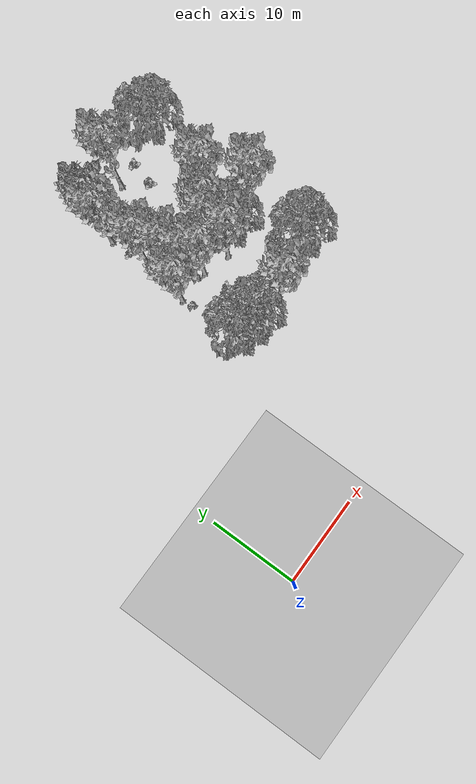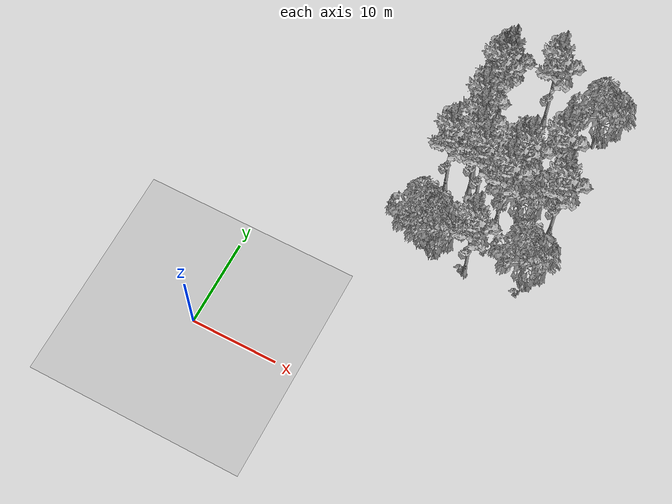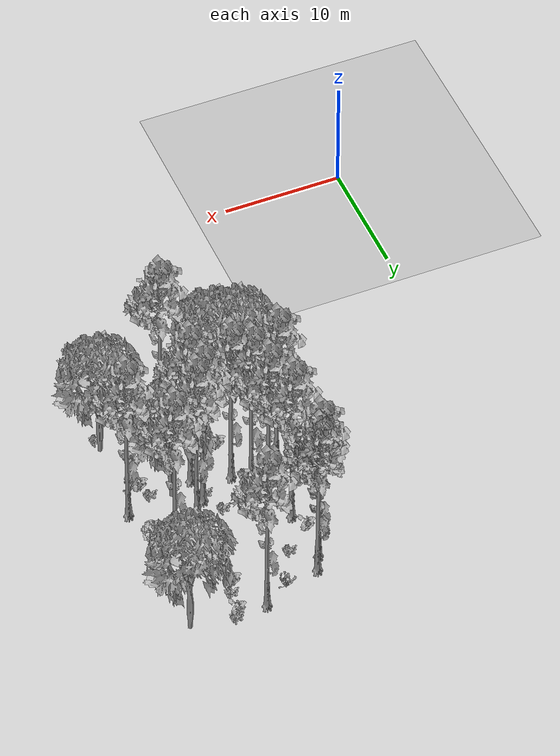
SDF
<sdf version="1.7">
 <world name="default">
  <model name="ground_plane">
   <static>1</static>
   <link name="link">
    <collision name="collision">
     <pose>-50 0 0 0 -0 0</pose>
     <geometry><plane><normal>0 0 1</normal><size>80 80</size></plane></geometry>
     <surface><contact><ode><min_depth>0.01</min_depth><max_vel>0</max_vel></ode></contact></surface>
    </collision>
    <visual name="grass">
     <cast_shadows>0</cast_shadows>
     <geometry>
      <mesh>
       <scale>0.46714285714285714 0.46714285714285714 0.1</scale>
       <uri>file://grass_plane/meshes/grass_plane.dae</uri>
      </mesh>
     </geometry>
    </visual>
   </link>
  </model>
  <model name="Tree 8">
   <static>1</static>
   <pose>17.459714961687183 36.581936003049336 0 1.57079 -0 0</pose>
   <link name="link">
    <collision name="collision">
     <geometry><mesh><scale>3.5 5 3.5</scale><uri>model://tree_9/meshes/tree_9.obj</uri></mesh></geometry>
    </collision>
    <visual name="visual">
     <geometry><mesh><scale>3.5 5 3.5</scale><uri>model://tree_9/meshes/tree_9.obj</uri></mesh></geometry>
    </visual>
   </link>
  </model>
  <model name="Tree 33">
   <static>1</static>
   <pose>18.888336202373424 19.00891305756567 0 1.57079 -0 0</pose>
   <link name="link">
    <collision name="collision">
     <geometry><mesh><scale>3.5 5 3.5</scale><uri>model://tree_2/meshes/tree_2.obj</uri></mesh></geometry>
    </collision>
    <visual name="visual">
     <geometry><mesh><scale>3.5 5 3.5</scale><uri>model://tree_2/meshes/tree_2.obj</uri></mesh></geometry>
    </visual>
   </link>
  </model>
  <model name="Tree 77">
   <static>1</static>
   <pose>27.13264223164208 31.46648215437368 0 1.57079 -0 0</pose>
   <link name="link">
    <collision name="collision">
     <geometry><mesh><scale>3.5 5 3.5</scale><uri>model://tree_9/meshes/tree_9.obj</uri></mesh></geometry>
    </collision>
    <visual name="visual">
     <geometry><mesh><scale>3.5 5 3.5</scale><uri>model://tree_9/meshes/tree_9.obj</uri></mesh></geometry>
    </visual>
   </link>
  </model>
  <model name="Tree 80">
   <static>1</static>
   <pose>17.247273729239808 19.502905807618518 0 1.57079 -0 0</pose>
   <link name="link">
    <collision name="collision">
     <geometry><mesh><scale>3.5 5 3.5</scale><uri>model://tree_2/meshes/tree_2.obj</uri></mesh></geometry>
    </collision>
    <visual name="visual">
     <geometry><mesh><scale>3.5 5 3.5</scale><uri>model://tree_2/meshes/tree_2.obj</uri></mesh></geometry>
    </visual>
   </link>
  </model>
  <model name="Tree 90">
   <static>1</static>
   <pose>18.071024182380796 37.84685704788694 0 1.57079 -0 0</pose>
   <link name="link">
    <collision name="collision">
     <geometry><mesh><scale>3.5 5 3.5</scale><uri>model://tree_9/meshes/tree_9.obj</uri></mesh></geometry>
    </collision>
    <visual name="visual">
     <geometry><mesh><scale>3.5 5 3.5</scale><uri>model://tree_9/meshes/tree_9.obj</uri></mesh></geometry>
    </visual>
   </link>
  </model>
  <model name="Tree 122">
   <static>1</static>
   <pose>18.05862319172133 37.82097752939002 0 1.57079 -0 0</pose>
   <link name="link">
    <collision name="collision">
     <geometry><mesh><scale>3.5 5 3.5</scale><uri>model://tree_9/meshes/tree_9.obj</uri></mesh></geometry>
    </collision>
    <visual name="visual">
     <geometry><mesh><scale>3.5 5 3.5</scale><uri>model://tree_9/meshes/tree_9.obj</uri></mesh></geometry>
    </visual>
   </link>
  </model>
  <model name="Tree 152">
   <static>1</static>
   <pose>22.97218649013748 39.57331749805812 0 1.57079 -0 0</pose>
   <link name="link">
    <collision name="collision">
     <geometry><mesh><scale>3.5 5 3.5</scale><uri>model://tree_9/meshes/tree_9.obj</uri></mesh></geometry>
    </collision>
    <visual name="visual">
     <geometry><mesh><scale>3.5 5 3.5</scale><uri>model://tree_9/meshes/tree_9.obj</uri></mesh></geometry>
    </visual>
   </link>
  </model>
  <model name="Tree 159">
   <static>1</static>
   <pose>23.155795922406917 18.587950382260004 0 1.57079 -0 0</pose>
   <link name="link">
    <collision name="collision">
     <geometry><mesh><scale>3.5 5 3.5</scale><uri>model://tree_9/meshes/tree_9.obj</uri></mesh></geometry>
    </collision>
    <visual name="visual">
     <geometry><mesh><scale>3.5 5 3.5</scale><uri>model://tree_9/meshes/tree_9.obj</uri></mesh></geometry>
    </visual>
   </link>
  </model>
  <model name="Tree 236">
   <static>1</static>
   <pose>29.063100638676303 39.345394394311754 0 1.57079 -0 0</pose>
   <link name="link">
    <collision name="collision">
     <geometry><mesh><scale>3.5 5 3.5</scale><uri>model://tree_2/meshes/tree_2.obj</uri></mesh></geometry>
    </collision>
    <visual name="visual">
     <geometry><mesh><scale>3.5 5 3.5</scale><uri>model://tree_2/meshes/tree_2.obj</uri></mesh></geometry>
    </visual>
   </link>
  </model>
  <model name="Tree 265">
   <static>1</static>
   <pose>23.579774420435307 25.721600984897094 0 1.57079 -0 0</pose>
   <link name="link">
    <collision name="collision">
     <geometry><mesh><scale>3.5 5 3.5</scale><uri>model://tree_9/meshes/tree_9.obj</uri></mesh></geometry>
    </collision>
    <visual name="visual">
     <geometry><mesh><scale>3.5 5 3.5</scale><uri>model://tree_9/meshes/tree_9.obj</uri></mesh></geometry>
    </visual>
   </link>
  </model>
  <model name="Tree 267">
   <static>1</static>
   <pose>19.292006245774004 27.67410443770146 0 1.57079 -0 0</pose>
   <link name="link">
    <collision name="collision">
     <geometry><mesh><scale>3.5 5 3.5</scale><uri>model://tree_9/meshes/tree_9.obj</uri></mesh></geometry>
    </collision>
    <visual name="visual">
     <geometry><mesh><scale>3.5 5 3.5</scale><uri>model://tree_9/meshes/tree_9.obj</uri></mesh></geometry>
    </visual>
   </link>
  </model>
  <model name="Tree 273">
   <static>1</static>
   <pose>16.780764506276007 26.70670163275227 0 1.57079 -0 0</pose>
   <link name="link">
    <collision name="collision">
     <geometry><mesh><scale>3.5 5 3.5</scale><uri>model://tree_9/meshes/tree_9.obj</uri></mesh></geometry>
    </collision>
    <visual name="visual">
     <geometry><mesh><scale>3.5 5 3.5</scale><uri>model://tree_9/meshes/tree_9.obj</uri></mesh></geometry>
    </visual>
   </link>
  </model>
  <model name="Tree 284">
   <static>1</static>
   <pose>25.440104627843596 26.602334801527377 0 1.57079 -0 0</pose>
   <link name="link">
    <collision name="collision">
     <geometry><mesh><scale>3.5 5 3.5</scale><uri>model://tree_2/meshes/tree_2.obj</uri></mesh></geometry>
    </collision>
    <visual name="visual">
     <geometry><mesh><scale>3.5 5 3.5</scale><uri>model://tree_2/meshes/tree_2.obj</uri></mesh></geometry>
    </visual>
   </link>
  </model>
  <model name="Tree 374">
   <static>1</static>
   <pose>18.753323511811473 29.771702123173156 0 1.57079 -0 0</pose>
   <link name="link">
    <collision name="collision">
     <geometry><mesh><scale>3.5 5 3.5</scale><uri>model://tree_9/meshes/tree_9.obj</uri></mesh></geometry>
    </collision>
    <visual name="visual">
     <geometry><mesh><scale>3.5 5 3.5</scale><uri>model://tree_9/meshes/tree_9.obj</uri></mesh></geometry>
    </visual>
   </link>
  </model>
  <model name="Tree 424">
   <static>1</static>
   <pose>20.533052475626505 26.5946470303856 0 1.57079 -0 0</pose>
   <link name="link">
    <collision name="collision">
     <geometry><mesh><scale>3.5 5 3.5</scale><uri>model://tree_9/meshes/tree_9.obj</uri></mesh></geometry>
    </collision>
    <visual name="visual">
     <geometry><mesh><scale>3.5 5 3.5</scale><uri>model://tree_9/meshes/tree_9.obj</uri></mesh></geometry>
    </visual>
   </link>
  </model>
  <model name="Tree 466">
   <static>1</static>
   <pose>24.37947138543602 28.999050713599743 0 1.57079 -0 0</pose>
   <link name="link">
    <collision name="collision">
     <geometry><mesh><scale>3.5 5 3.5</scale><uri>model://tree_9/meshes/tree_9.obj</uri></mesh></geometry>
    </collision>
    <visual name="visual">
     <geometry><mesh><scale>3.5 5 3.5</scale><uri>model://tree_9/meshes/tree_9.obj</uri></mesh></geometry>
    </visual>
   </link>
  </model>
  <model name="Tree 476">
   <static>1</static>
   <pose>29.311691172067327 27.11725270563825 0 1.57079 -0 0</pose>
   <link name="link">
    <collision name="collision">
     <geometry><mesh><scale>3.5 5 3.5</scale><uri>model://tree_9/meshes/tree_9.obj</uri></mesh></geometry>
    </collision>
    <visual name="visual">
     <geometry><mesh><scale>3.5 5 3.5</scale><uri>model://tree_9/meshes/tree_9.obj</uri></mesh></geometry>
    </visual>
   </link>
  </model>
  <model name="Tree 479">
   <static>1</static>
   <pose>23.464593729480647 27.978804767744293 0 1.57079 -0 0</pose>
   <link name="link">
    <collision name="collision">
     <geometry><mesh><scale>3.5 5 3.5</scale><uri>model://tree_9/meshes/tree_9.obj</uri></mesh></geometry>
    </collision>
    <visual name="visual">
     <geometry><mesh><scale>3.5 5 3.5</scale><uri>model://tree_9/meshes/tree_9.obj</uri></mesh></geometry>
    </visual>
   </link>
  </model>
  <model name="Tree 497">
   <static>1</static>
   <pose>17.78792845384387 32.1187350746461 0 1.57079 -0 0</pose>
   <link name="link">
    <collision name="collision">
     <geometry><mesh><scale>3.5 5 3.5</scale><uri>model://tree_9/meshes/tree_9.obj</uri></mesh></geometry>
    </collision>
    <visual name="visual">
     <geometry><mesh><scale>3.5 5 3.5</scale><uri>model://tree_9/meshes/tree_9.obj</uri></mesh></geometry>
    </visual>
   </link>
  </model>
  <model name="Tree 578">
   <static>1</static>
   <pose>28.851628547489284 20.140300215479634 0 1.57079 -0 0</pose>
   <link name="link">
    <collision name="collision">
     <geometry><mesh><scale>3.5 5 3.5</scale><uri>model://tree_2/meshes/tree_2.obj</uri></mesh></geometry>
    </collision>
    <visual name="visual">
     <geometry><mesh><scale>3.5 5 3.5</scale><uri>model://tree_2/meshes/tree_2.obj</uri></mesh></geometry>
    </visual>
   </link>
  </model>
  <model name="Bush 71">
   <static>1</static>
   <pose>27.09180192101759 25.997535342448202 0 1.57079 -0 0</pose>
   <link name="link">
    <collision name="collision">
     <geometry><mesh><scale>2 2 2</scale><uri>model://bush_2/meshes/bush_2.obj</uri></mesh></geometry>
     <surface><contact><collide_without_contact>false</collide_without_contact></contact></surface>
    </collision>
    <visual name="visual">
     <geometry><mesh><scale>2 2 2</scale><uri>model://bush_2/meshes/bush_2.obj</uri></mesh></geometry>
    </visual>
   </link>
  </model>
  <model name="Bush 96">
   <static>1</static>
   <pose>28.900409146682478 19.08304696007078 0 1.57079 -0 0</pose>
   <link name="link">
    <collision name="collision">
     <geometry><mesh><scale>2 2 2</scale><uri>model://bush_2/meshes/bush_2.obj</uri></mesh></geometry>
     <surface><contact><collide_without_contact>false</collide_without_contact></contact></surface>
    </collision>
    <visual name="visual">
     <geometry><mesh><scale>2 2 2</scale><uri>model://bush_2/meshes/bush_2.obj</uri></mesh></geometry>
    </visual>
   </link>
  </model>
  <model name="Bush 104">
   <static>1</static>
   <pose>28.063376519625862 31.776588917470477 0 1.57079 -0 0</pose>
   <link name="link">
    <collision name="collision">
     <geometry><mesh><scale>2 2 2</scale><uri>model://bush_2/meshes/bush_2.obj</uri></mesh></geometry>
     <surface><contact><collide_without_contact>false</collide_without_contact></contact></surface>
    </collision>
    <visual name="visual">
     <geometry><mesh><scale>2 2 2</scale><uri>model://bush_2/meshes/bush_2.obj</uri></mesh></geometry>
    </visual>
   </link>
  </model>
  <model name="Bush 113">
   <static>1</static>
   <pose>27.765448072192257 34.50757688628485 0 1.57079 -0 0</pose>
   <link name="link">
    <collision name="collision">
     <geometry><mesh><scale>2 2 2</scale><uri>model://bush_0/meshes/bush_0.obj</uri></mesh></geometry>
     <surface><contact><collide_without_contact>false</collide_without_contact></contact></surface>
    </collision>
    <visual name="visual">
     <geometry><mesh><scale>2 2 2</scale><uri>model://bush_0/meshes/bush_0.obj</uri></mesh></geometry>
    </visual>
   </link>
  </model>
  <model name="Bush 162">
   <static>1</static>
   <pose>27.870024999666285 25.357465541482213 0 1.57079 -0 0</pose>
   <link name="link">
    <collision name="collision">
     <geometry><mesh><scale>2 2 2</scale><uri>model://bush_0/meshes/bush_0.obj</uri></mesh></geometry>
     <surface><contact><collide_without_contact>false</collide_without_contact></contact></surface>
    </collision>
    <visual name="visual">
     <geometry><mesh><scale>2 2 2</scale><uri>model://bush_0/meshes/bush_0.obj</uri></mesh></geometry>
    </visual>
   </link>
  </model>
  <model name="Bush 179">
   <static>1</static>
   <pose>25.011809069000485 37.480138848245346 0 1.57079 -0 0</pose>
   <link name="link">
    <collision name="collision">
     <geometry><mesh><scale>2 2 2</scale><uri>model://bush_2/meshes/bush_2.obj</uri></mesh></geometry>
     <surface><contact><collide_without_contact>false</collide_without_contact></contact></surface>
    </collision>
    <visual name="visual">
     <geometry><mesh><scale>2 2 2</scale><uri>model://bush_2/meshes/bush_2.obj</uri></mesh></geometry>
    </visual>
   </link>
  </model>
  <model name="Bush 184">
   <static>1</static>
   <pose>22.35285147632213 29.429746881619337 0 1.57079 -0 0</pose>
   <link name="link">
    <collision name="collision">
     <geometry><mesh><scale>2 2 2</scale><uri>model://bush_2/meshes/bush_2.obj</uri></mesh></geometry>
     <surface><contact><collide_without_contact>false</collide_without_contact></contact></surface>
    </collision>
    <visual name="visual">
     <geometry><mesh><scale>2 2 2</scale><uri>model://bush_2/meshes/bush_2.obj</uri></mesh></geometry>
    </visual>
   </link>
  </model>
  <model name="Bush 191">
   <static>1</static>
   <pose>28.27617759770088 24.896064187053767 0 1.57079 -0 0</pose>
   <link name="link">
    <collision name="collision">
     <geometry><mesh><scale>2 2 2</scale><uri>model://bush_4/meshes/bush_4.obj</uri></mesh></geometry>
     <surface><contact><collide_without_contact>false</collide_without_contact></contact></surface>
    </collision>
    <visual name="visual">
     <geometry><mesh><scale>2 2 2</scale><uri>model://bush_4/meshes/bush_4.obj</uri></mesh></geometry>
    </visual>
   </link>
  </model>
  <model name="Bush 207">
   <static>1</static>
   <pose>27.669747269084638 31.29358288493674 0 1.57079 -0 0</pose>
   <link name="link">
    <collision name="collision">
     <geometry><mesh><scale>2 2 2</scale><uri>model://bush_2/meshes/bush_2.obj</uri></mesh></geometry>
     <surface><contact><collide_without_contact>false</collide_without_contact></contact></surface>
    </collision>
    <visual name="visual">
     <geometry><mesh><scale>2 2 2</scale><uri>model://bush_2/meshes/bush_2.obj</uri></mesh></geometry>
    </visual>
   </link>
  </model>
  <model name="Bush 214">
   <static>1</static>
   <pose>22.432510441515277 18.83819106694201 0 1.57079 -0 0</pose>
   <link name="link">
    <collision name="collision">
     <geometry><mesh><scale>2 2 2</scale><uri>model://bush_2/meshes/bush_2.obj</uri></mesh></geometry>
     <surface><contact><collide_without_contact>false</collide_without_contact></contact></surface>
    </collision>
    <visual name="visual">
     <geometry><mesh><scale>2 2 2</scale><uri>model://bush_2/meshes/bush_2.obj</uri></mesh></geometry>
    </visual>
   </link>
  </model>
  <model name="Bush 272">
   <static>1</static>
   <pose>25.560342878504528 39.85553743539822 0 1.57079 -0 0</pose>
   <link name="link">
    <collision name="collision">
     <geometry><mesh><scale>2 2 2</scale><uri>model://bush_2/meshes/bush_2.obj</uri></mesh></geometry>
     <surface><contact><collide_without_contact>false</collide_without_contact></contact></surface>
    </collision>
    <visual name="visual">
     <geometry><mesh><scale>2 2 2</scale><uri>model://bush_2/meshes/bush_2.obj</uri></mesh></geometry>
    </visual>
   </link>
  </model>
  <model name="Bush 282">
   <static>1</static>
   <pose>19.5586898943626 26.88746080941098 0 1.57079 -0 0</pose>
   <link name="link">
    <collision name="collision">
     <geometry><mesh><scale>2 2 2</scale><uri>model://bush_2/meshes/bush_2.obj</uri></mesh></geometry>
     <surface><contact><collide_without_contact>false</collide_without_contact></contact></surface>
    </collision>
    <visual name="visual">
     <geometry><mesh><scale>2 2 2</scale><uri>model://bush_2/meshes/bush_2.obj</uri></mesh></geometry>
    </visual>
   </link>
  </model>
  <model name="Bush 305">
   <static>1</static>
   <pose>24.84356731687005 36.97446446041927 0 1.57079 -0 0</pose>
   <link name="link">
    <collision name="collision">
     <geometry><mesh><scale>2 2 2</scale><uri>model://bush_0/meshes/bush_0.obj</uri></mesh></geometry>
     <surface><contact><collide_without_contact>false</collide_without_contact></contact></surface>
    </collision>
    <visual name="visual">
     <geometry><mesh><scale>2 2 2</scale><uri>model://bush_0/meshes/bush_0.obj</uri></mesh></geometry>
    </visual>
   </link>
  </model>
  <model name="Bush 323">
   <static>1</static>
   <pose>20.95060821521153 38.51204639048086 0 1.57079 -0 0</pose>
   <link name="link">
    <collision name="collision">
     <geometry><mesh><scale>2 2 2</scale><uri>model://bush_4/meshes/bush_4.obj</uri></mesh></geometry>
     <surface><contact><collide_without_contact>false</collide_without_contact></contact></surface>
    </collision>
    <visual name="visual">
     <geometry><mesh><scale>2 2 2</scale><uri>model://bush_4/meshes/bush_4.obj</uri></mesh></geometry>
    </visual>
   </link>
  </model>
  <model name="Bush 328">
   <static>1</static>
   <pose>16.8823226946027 25.47406643993301 0 1.57079 -0 0</pose>
   <link name="link">
    <collision name="collision">
     <geometry><mesh><scale>2 2 2</scale><uri>model://bush_2/meshes/bush_2.obj</uri></mesh></geometry>
     <surface><contact><collide_without_contact>false</collide_without_contact></contact></surface>
    </collision>
    <visual name="visual">
     <geometry><mesh><scale>2 2 2</scale><uri>model://bush_2/meshes/bush_2.obj</uri></mesh></geometry>
    </visual>
   </link>
  </model>
  <model name="Bush 352">
   <static>1</static>
   <pose>23.70142119411495 21.85991442914515 0 1.57079 -0 0</pose>
   <link name="link">
    <collision name="collision">
     <geometry><mesh><scale>2 2 2</scale><uri>model://bush_2/meshes/bush_2.obj</uri></mesh></geometry>
     <surface><contact><collide_without_contact>false</collide_without_contact></contact></surface>
    </collision>
    <visual name="visual">
     <geometry><mesh><scale>2 2 2</scale><uri>model://bush_2/meshes/bush_2.obj</uri></mesh></geometry>
    </visual>
   </link>
  </model>
  <model name="Bush 379">
   <static>1</static>
   <pose>19.338012465397817 35.36099868974169 0 1.57079 -0 0</pose>
   <link name="link">
    <collision name="collision">
     <geometry><mesh><scale>2 2 2</scale><uri>model://bush_2/meshes/bush_2.obj</uri></mesh></geometry>
     <surface><contact><collide_without_contact>false</collide_without_contact></contact></surface>
    </collision>
    <visual name="visual">
     <geometry><mesh><scale>2 2 2</scale><uri>model://bush_2/meshes/bush_2.obj</uri></mesh></geometry>
    </visual>
   </link>
  </model>
  <model name="Bush 442">
   <static>1</static>
   <pose>27.601259623864777 23.150290334493192 0 1.57079 -0 0</pose>
   <link name="link">
    <collision name="collision">
     <geometry><mesh><scale>2 2 2</scale><uri>model://bush_0/meshes/bush_0.obj</uri></mesh></geometry>
     <surface><contact><collide_without_contact>false</collide_without_contact></contact></surface>
    </collision>
    <visual name="visual">
     <geometry><mesh><scale>2 2 2</scale><uri>model://bush_0/meshes/bush_0.obj</uri></mesh></geometry>
    </visual>
   </link>
  </model>
  <model name="Bush 478">
   <static>1</static>
   <pose>23.051641370745642 27.45143879739277 0 1.57079 -0 0</pose>
   <link name="link">
    <collision name="collision">
     <geometry><mesh><scale>2 2 2</scale><uri>model://bush_2/meshes/bush_2.obj</uri></mesh></geometry>
     <surface><contact><collide_without_contact>false</collide_without_contact></contact></surface>
    </collision>
    <visual name="visual">
     <geometry><mesh><scale>2 2 2</scale><uri>model://bush_2/meshes/bush_2.obj</uri></mesh></geometry>
    </visual>
   </link>
  </model>
  <model name="Bush 483">
   <static>1</static>
   <pose>28.587346628321484 29.962982364173286 0 1.57079 -0 0</pose>
   <link name="link">
    <collision name="collision">
     <geometry><mesh><scale>2 2 2</scale><uri>model://bush_1/meshes/bush_1.obj</uri></mesh></geometry>
     <surface><contact><collide_without_contact>false</collide_without_contact></contact></surface>
    </collision>
    <visual name="visual">
     <geometry><mesh><scale>2 2 2</scale><uri>model://bush_1/meshes/bush_1.obj</uri></mesh></geometry>
    </visual>
   </link>
  </model>
  <model name="Bush 503">
   <static>1</static>
   <pose>27.464118184721684 22.702575133120753 0 1.57079 -0 0</pose>
   <link name="link">
    <collision name="collision">
     <geometry><mesh><scale>2 2 2</scale><uri>model://bush_5/meshes/bush_5.obj</uri></mesh></geometry>
     <surface><contact><collide_without_contact>false</collide_without_contact></contact></surface>
    </collision>
    <visual name="visual">
     <geometry><mesh><scale>2 2 2</scale><uri>model://bush_5/meshes/bush_5.obj</uri></mesh></geometry>
    </visual>
   </link>
  </model>
  <model name="Bush 516">
   <static>1</static>
   <pose>20.666892569470946 23.6687179494337 0 1.57079 -0 0</pose>
   <link name="link">
    <collision name="collision">
     <geometry><mesh><scale>2 2 2</scale><uri>model://bush_0/meshes/bush_0.obj</uri></mesh></geometry>
     <surface><contact><collide_without_contact>false</collide_without_contact></contact></surface>
    </collision>
    <visual name="visual">
     <geometry><mesh><scale>2 2 2</scale><uri>model://bush_0/meshes/bush_0.obj</uri></mesh></geometry>
    </visual>
   </link>
  </model>
  <model name="Bush 528">
   <static>1</static>
   <pose>25.560080416534873 39.712734058450735 0 1.57079 -0 0</pose>
   <link name="link">
    <collision name="collision">
     <geometry><mesh><scale>2 2 2</scale><uri>model://bush_0/meshes/bush_0.obj</uri></mesh></geometry>
     <surface><contact><collide_without_contact>false</collide_without_contact></contact></surface>
    </collision>
    <visual name="visual">
     <geometry><mesh><scale>2 2 2</scale><uri>model://bush_0/meshes/bush_0.obj</uri></mesh></geometry>
    </visual>
   </link>
  </model>
  <model name="Bush 540">
   <static>1</static>
   <pose>24.14637521199353 32.15832530834139 0 1.57079 -0 0</pose>
   <link name="link">
    <collision name="collision">
     <geometry><mesh><scale>2 2 2</scale><uri>model://bush_2/meshes/bush_2.obj</uri></mesh></geometry>
     <surface><contact><collide_without_contact>false</collide_without_contact></contact></surface>
    </collision>
    <visual name="visual">
     <geometry><mesh><scale>2 2 2</scale><uri>model://bush_2/meshes/bush_2.obj</uri></mesh></geometry>
    </visual>
   </link>
  </model>
  <model name="Bush 557">
   <static>1</static>
   <pose>17.48842749864923 34.09032296366503 0 1.57079 -0 0</pose>
   <link name="link">
    <collision name="collision">
     <geometry><mesh><scale>2 2 2</scale><uri>model://bush_0/meshes/bush_0.obj</uri></mesh></geometry>
     <surface><contact><collide_without_contact>false</collide_without_contact></contact></surface>
    </collision>
    <visual name="visual">
     <geometry><mesh><scale>2 2 2</scale><uri>model://bush_0/meshes/bush_0.obj</uri></mesh></geometry>
    </visual>
   </link>
  </model>
 </world>
</sdf>
